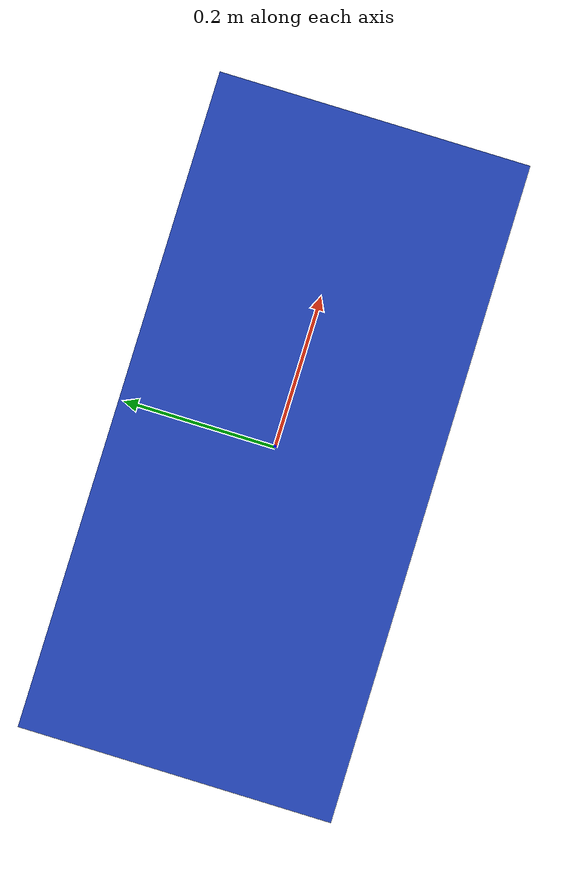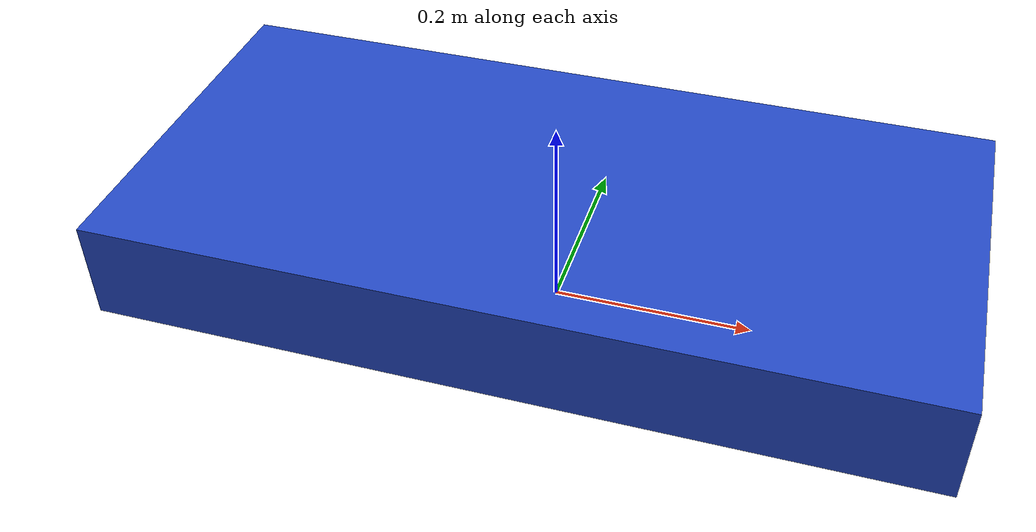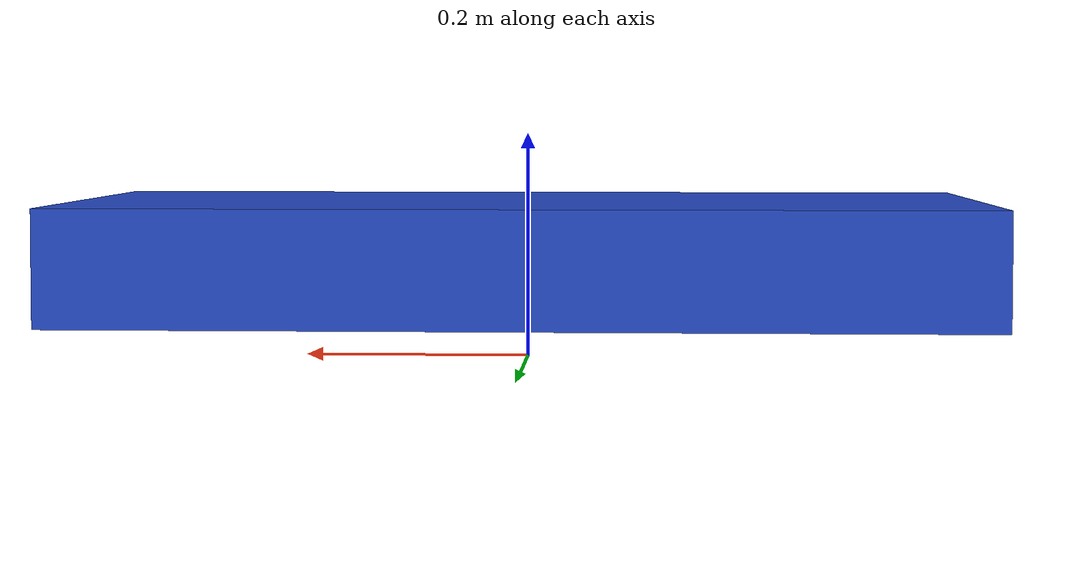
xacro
<?xml version="1.0"?>

<robot xmlns:xacro="http://www.ros.org/wiki/xacro">

  <!-- Temel gövde ölçüleri metre cinsindedir. -->
  <xacro:property name="base_length" value="0.80"/>
  <xacro:property name="base_width" value="0.38"/>
  <xacro:property name="base_height" value="0.10"/>

  <!-- Gövdenin yerden yüksekliği -->
  <xacro:property name="base_ground_clearance" value="0.04"/>

  <!-- Yaklaşık gövde kütlesi -->
  <xacro:property name="base_mass" value="80.0"/>

  <!-- Zemindeki referans noktası -->
  <link name="base_footprint"/>

  <!-- Robotun ana gövde bağlantısı -->
  <link name="base_link">

    <visual>
      <origin xyz="0 0 0" rpy="0 0 0"/>

      <geometry>
        <box size="${base_length} ${base_width} ${base_height}"/>
      </geometry>

      <material name="yektemak_blue"/>
    </visual>

    <collision>
      <origin xyz="0 0 0" rpy="0 0 0"/>

      <geometry>
        <box size="${base_length} ${base_width} ${base_height}"/>
      </geometry>
    </collision>

    <inertial>
      <origin xyz="0 0 0" rpy="0 0 0"/>

      <mass value="${base_mass}"/>

      <inertia
        ixx="${base_mass * (base_width * base_width + base_height * base_height) / 12.0}"
        ixy="0.0"
        ixz="0.0"
        iyy="${base_mass * (base_length * base_length + base_height * base_height) / 12.0}"
        iyz="0.0"
        izz="${base_mass * (base_length * base_length + base_width * base_width) / 12.0}"/>
    </inertial>

  </link>

  <!-- base_footprint ile gövde arasındaki sabit bağlantı -->
  <joint name="base_footprint_joint" type="fixed">

    <parent link="base_footprint"/>
    <child link="base_link"/>

    <origin
      xyz="0 0 ${base_ground_clearance + base_height / 2.0}"
      rpy="0 0 0"/>

  </joint>

</robot>
